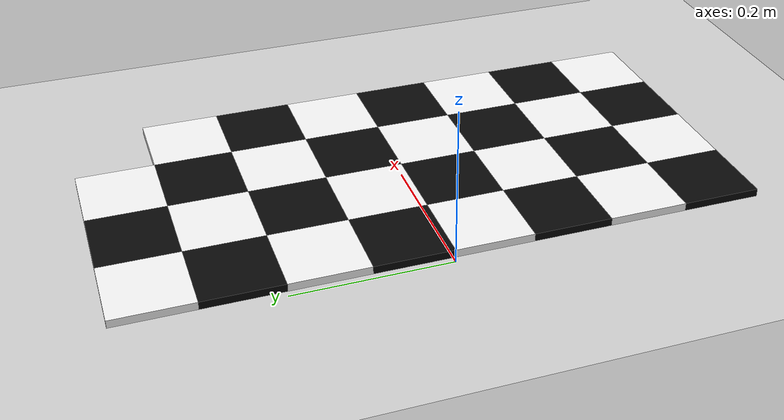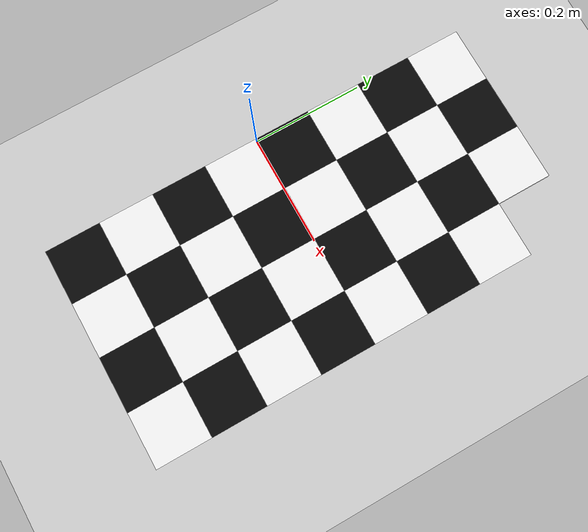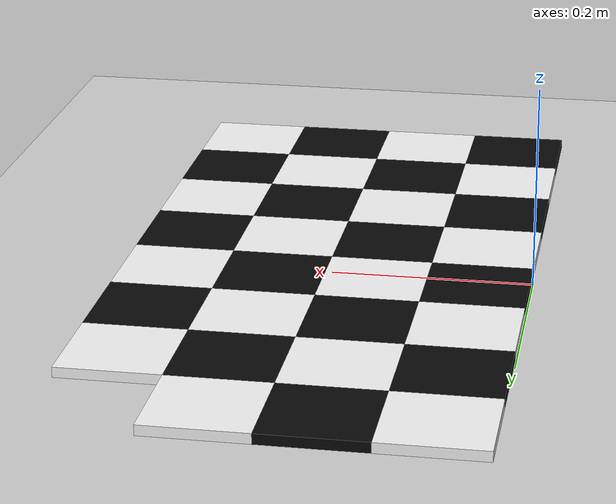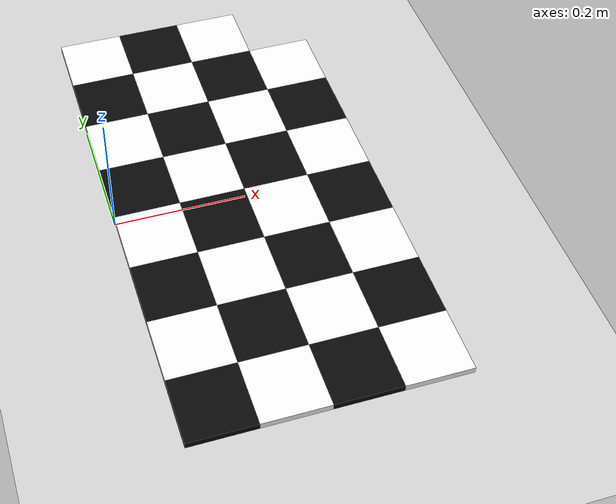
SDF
<sdf version="1.9">
 <world name="v7_railway_tunnel">
  <model name="ground_plane">
   <static>true</static>
   <link name="link">
    <collision name="collision">
     <geometry><plane><normal>0 0 1</normal><size>1 1</size></plane></geometry>
    </collision>
    <visual name="visual">
     <geometry><plane><normal>0 0 1</normal><size>500 500</size></plane></geometry>
     <material>
      <ambient>0.8 0.8 0.8 1</ambient>
      <diffuse>0.8 0.8 0.8 1</diffuse>
      <specular>0.1 0.1 0.1 1</specular>
     </material>
    </visual>
   </link>
  </model>
  <model name="optical_flow_floor">
   <static>true</static>
   <link name="fine_tile_4_0">
    <pose>0.05 -0.35 0.012 0 0 0</pose>
    <visual name="visual">
     <geometry><box><size>0.1 0.1 0.01</size></box></geometry>
     <material>
      <ambient>0.03 0.03 0.03 1</ambient>
      <diffuse>0.03 0.03 0.03 1</diffuse>
      <specular>0.1 0.1 0.1 1</specular>
     </material>
    </visual>
   </link>
   <link name="fine_tile_4_1">
    <pose>0.05 -0.25 0.012 0 0 0</pose>
    <visual name="visual">
     <geometry><box><size>0.1 0.1 0.01</size></box></geometry>
     <material>
      <ambient>0.95 0.95 0.95 1</ambient>
      <diffuse>0.95 0.95 0.95 1</diffuse>
      <specular>0.1 0.1 0.1 1</specular>
     </material>
    </visual>
   </link>
   <link name="fine_tile_4_2">
    <pose>0.05 -0.15 0.012 0 0 0</pose>
    <visual name="visual">
     <geometry><box><size>0.1 0.1 0.01</size></box></geometry>
     <material>
      <ambient>0.03 0.03 0.03 1</ambient>
      <diffuse>0.03 0.03 0.03 1</diffuse>
      <specular>0.1 0.1 0.1 1</specular>
     </material>
    </visual>
   </link>
   <link name="fine_tile_4_3">
    <pose>0.05 -0.05 0.012 0 0 0</pose>
    <visual name="visual">
     <geometry><box><size>0.1 0.1 0.01</size></box></geometry>
     <material>
      <ambient>0.95 0.95 0.95 1</ambient>
      <diffuse>0.95 0.95 0.95 1</diffuse>
      <specular>0.1 0.1 0.1 1</specular>
     </material>
    </visual>
   </link>
   <link name="fine_tile_4_4">
    <pose>0.05 0.05 0.012 0 0 0</pose>
    <visual name="visual">
     <geometry><box><size>0.1 0.1 0.01</size></box></geometry>
     <material>
      <ambient>0.03 0.03 0.03 1</ambient>
      <diffuse>0.03 0.03 0.03 1</diffuse>
      <specular>0.1 0.1 0.1 1</specular>
     </material>
    </visual>
   </link>
   <link name="fine_tile_4_5">
    <pose>0.05 0.15 0.012 0 0 0</pose>
    <visual name="visual">
     <geometry><box><size>0.1 0.1 0.01</size></box></geometry>
     <material>
      <ambient>0.95 0.95 0.95 1</ambient>
      <diffuse>0.95 0.95 0.95 1</diffuse>
      <specular>0.1 0.1 0.1 1</specular>
     </material>
    </visual>
   </link>
   <link name="fine_tile_4_6">
    <pose>0.05 0.25 0.012 0 0 0</pose>
    <visual name="visual">
     <geometry><box><size>0.1 0.1 0.01</size></box></geometry>
     <material>
      <ambient>0.03 0.03 0.03 1</ambient>
      <diffuse>0.03 0.03 0.03 1</diffuse>
      <specular>0.1 0.1 0.1 1</specular>
     </material>
    </visual>
   </link>
   <link name="fine_tile_4_7">
    <pose>0.05 0.35 0.012 0 0 0</pose>
    <visual name="visual">
     <geometry><box><size>0.1 0.1 0.01</size></box></geometry>
     <material>
      <ambient>0.95 0.95 0.95 1</ambient>
      <diffuse>0.95 0.95 0.95 1</diffuse>
      <specular>0.1 0.1 0.1 1</specular>
     </material>
    </visual>
   </link>
   <link name="fine_tile_5_0">
    <pose>0.15 -0.35 0.012 0 0 0</pose>
    <visual name="visual">
     <geometry><box><size>0.1 0.1 0.01</size></box></geometry>
     <material>
      <ambient>0.95 0.95 0.95 1</ambient>
      <diffuse>0.95 0.95 0.95 1</diffuse>
      <specular>0.1 0.1 0.1 1</specular>
     </material>
    </visual>
   </link>
   <link name="fine_tile_5_1">
    <pose>0.15 -0.25 0.012 0 0 0</pose>
    <visual name="visual">
     <geometry><box><size>0.1 0.1 0.01</size></box></geometry>
     <material>
      <ambient>0.03 0.03 0.03 1</ambient>
      <diffuse>0.03 0.03 0.03 1</diffuse>
      <specular>0.1 0.1 0.1 1</specular>
     </material>
    </visual>
   </link>
   <link name="fine_tile_5_2">
    <pose>0.15 -0.15 0.012 0 0 0</pose>
    <visual name="visual">
     <geometry><box><size>0.1 0.1 0.01</size></box></geometry>
     <material>
      <ambient>0.95 0.95 0.95 1</ambient>
      <diffuse>0.95 0.95 0.95 1</diffuse>
      <specular>0.1 0.1 0.1 1</specular>
     </material>
    </visual>
   </link>
   <link name="fine_tile_5_3">
    <pose>0.15 -0.05 0.012 0 0 0</pose>
    <visual name="visual">
     <geometry><box><size>0.1 0.1 0.01</size></box></geometry>
     <material>
      <ambient>0.03 0.03 0.03 1</ambient>
      <diffuse>0.03 0.03 0.03 1</diffuse>
      <specular>0.1 0.1 0.1 1</specular>
     </material>
    </visual>
   </link>
   <link name="fine_tile_5_4">
    <pose>0.15 0.05 0.012 0 0 0</pose>
    <visual name="visual">
     <geometry><box><size>0.1 0.1 0.01</size></box></geometry>
     <material>
      <ambient>0.95 0.95 0.95 1</ambient>
      <diffuse>0.95 0.95 0.95 1</diffuse>
      <specular>0.1 0.1 0.1 1</specular>
     </material>
    </visual>
   </link>
   <link name="fine_tile_5_5">
    <pose>0.15 0.15 0.012 0 0 0</pose>
    <visual name="visual">
     <geometry><box><size>0.1 0.1 0.01</size></box></geometry>
     <material>
      <ambient>0.03 0.03 0.03 1</ambient>
      <diffuse>0.03 0.03 0.03 1</diffuse>
      <specular>0.1 0.1 0.1 1</specular>
     </material>
    </visual>
   </link>
   <link name="fine_tile_5_6">
    <pose>0.15 0.25 0.012 0 0 0</pose>
    <visual name="visual">
     <geometry><box><size>0.1 0.1 0.01</size></box></geometry>
     <material>
      <ambient>0.95 0.95 0.95 1</ambient>
      <diffuse>0.95 0.95 0.95 1</diffuse>
      <specular>0.1 0.1 0.1 1</specular>
     </material>
    </visual>
   </link>
   <link name="fine_tile_5_7">
    <pose>0.15 0.35 0.012 0 0 0</pose>
    <visual name="visual">
     <geometry><box><size>0.1 0.1 0.01</size></box></geometry>
     <material>
      <ambient>0.03 0.03 0.03 1</ambient>
      <diffuse>0.03 0.03 0.03 1</diffuse>
      <specular>0.1 0.1 0.1 1</specular>
     </material>
    </visual>
   </link>
   <link name="fine_tile_6_0">
    <pose>0.25 -0.35 0.012 0 0 0</pose>
    <visual name="visual">
     <geometry><box><size>0.1 0.1 0.01</size></box></geometry>
     <material>
      <ambient>0.03 0.03 0.03 1</ambient>
      <diffuse>0.03 0.03 0.03 1</diffuse>
      <specular>0.1 0.1 0.1 1</specular>
     </material>
    </visual>
   </link>
   <link name="fine_tile_6_1">
    <pose>0.25 -0.25 0.012 0 0 0</pose>
    <visual name="visual">
     <geometry><box><size>0.1 0.1 0.01</size></box></geometry>
     <material>
      <ambient>0.95 0.95 0.95 1</ambient>
      <diffuse>0.95 0.95 0.95 1</diffuse>
      <specular>0.1 0.1 0.1 1</specular>
     </material>
    </visual>
   </link>
   <link name="fine_tile_6_2">
    <pose>0.25 -0.15 0.012 0 0 0</pose>
    <visual name="visual">
     <geometry><box><size>0.1 0.1 0.01</size></box></geometry>
     <material>
      <ambient>0.03 0.03 0.03 1</ambient>
      <diffuse>0.03 0.03 0.03 1</diffuse>
      <specular>0.1 0.1 0.1 1</specular>
     </material>
    </visual>
   </link>
   <link name="fine_tile_6_3">
    <pose>0.25 -0.05 0.012 0 0 0</pose>
    <visual name="visual">
     <geometry><box><size>0.1 0.1 0.01</size></box></geometry>
     <material>
      <ambient>0.95 0.95 0.95 1</ambient>
      <diffuse>0.95 0.95 0.95 1</diffuse>
      <specular>0.1 0.1 0.1 1</specular>
     </material>
    </visual>
   </link>
   <link name="fine_tile_6_4">
    <pose>0.25 0.05 0.012 0 0 0</pose>
    <visual name="visual">
     <geometry><box><size>0.1 0.1 0.01</size></box></geometry>
     <material>
      <ambient>0.03 0.03 0.03 1</ambient>
      <diffuse>0.03 0.03 0.03 1</diffuse>
      <specular>0.1 0.1 0.1 1</specular>
     </material>
    </visual>
   </link>
   <link name="fine_tile_6_5">
    <pose>0.25 0.15 0.012 0 0 0</pose>
    <visual name="visual">
     <geometry><box><size>0.1 0.1 0.01</size></box></geometry>
     <material>
      <ambient>0.95 0.95 0.95 1</ambient>
      <diffuse>0.95 0.95 0.95 1</diffuse>
      <specular>0.1 0.1 0.1 1</specular>
     </material>
    </visual>
   </link>
   <link name="fine_tile_6_6">
    <pose>0.25 0.25 0.012 0 0 0</pose>
    <visual name="visual">
     <geometry><box><size>0.1 0.1 0.01</size></box></geometry>
     <material>
      <ambient>0.03 0.03 0.03 1</ambient>
      <diffuse>0.03 0.03 0.03 1</diffuse>
      <specular>0.1 0.1 0.1 1</specular>
     </material>
    </visual>
   </link>
   <link name="fine_tile_6_7">
    <pose>0.25 0.35 0.012 0 0 0</pose>
    <visual name="visual">
     <geometry><box><size>0.1 0.1 0.01</size></box></geometry>
     <material>
      <ambient>0.95 0.95 0.95 1</ambient>
      <diffuse>0.95 0.95 0.95 1</diffuse>
      <specular>0.1 0.1 0.1 1</specular>
     </material>
    </visual>
   </link>
   <link name="fine_tile_7_0">
    <pose>0.35 -0.35 0.012 0 0 0</pose>
    <visual name="visual">
     <geometry><box><size>0.1 0.1 0.01</size></box></geometry>
     <material>
      <ambient>0.95 0.95 0.95 1</ambient>
      <diffuse>0.95 0.95 0.95 1</diffuse>
      <specular>0.1 0.1 0.1 1</specular>
     </material>
    </visual>
   </link>
   <link name="fine_tile_7_1">
    <pose>0.35 -0.25 0.012 0 0 0</pose>
    <visual name="visual">
     <geometry><box><size>0.1 0.1 0.01</size></box></geometry>
     <material>
      <ambient>0.03 0.03 0.03 1</ambient>
      <diffuse>0.03 0.03 0.03 1</diffuse>
      <specular>0.1 0.1 0.1 1</specular>
     </material>
    </visual>
   </link>
   <link name="fine_tile_7_2">
    <pose>0.35 -0.15 0.012 0 0 0</pose>
    <visual name="visual">
     <geometry><box><size>0.1 0.1 0.01</size></box></geometry>
     <material>
      <ambient>0.95 0.95 0.95 1</ambient>
      <diffuse>0.95 0.95 0.95 1</diffuse>
      <specular>0.1 0.1 0.1 1</specular>
     </material>
    </visual>
   </link>
   <link name="fine_tile_7_3">
    <pose>0.35 -0.05 0.012 0 0 0</pose>
    <visual name="visual">
     <geometry><box><size>0.1 0.1 0.01</size></box></geometry>
     <material>
      <ambient>0.03 0.03 0.03 1</ambient>
      <diffuse>0.03 0.03 0.03 1</diffuse>
      <specular>0.1 0.1 0.1 1</specular>
     </material>
    </visual>
   </link>
   <link name="fine_tile_7_4">
    <pose>0.35 0.05 0.012 0 0 0</pose>
    <visual name="visual">
     <geometry><box><size>0.1 0.1 0.01</size></box></geometry>
     <material>
      <ambient>0.95 0.95 0.95 1</ambient>
      <diffuse>0.95 0.95 0.95 1</diffuse>
      <specular>0.1 0.1 0.1 1</specular>
     </material>
    </visual>
   </link>
   <link name="fine_tile_7_5">
    <pose>0.35 0.15 0.012 0 0 0</pose>
    <visual name="visual">
     <geometry><box><size>0.1 0.1 0.01</size></box></geometry>
     <material>
      <ambient>0.03 0.03 0.03 1</ambient>
      <diffuse>0.03 0.03 0.03 1</diffuse>
      <specular>0.1 0.1 0.1 1</specular>
     </material>
    </visual>
   </link>
   <link name="fine_tile_7_6">
    <pose>0.35 0.25 0.012 0 0 0</pose>
    <visual name="visual">
     <geometry><box><size>0.1 0.1 0.01</size></box></geometry>
     <material>
      <ambient>0.95 0.95 0.95 1</ambient>
      <diffuse>0.95 0.95 0.95 1</diffuse>
      <specular>0.1 0.1 0.1 1</specular>
     </material>
    </visual>
   </link>
  </model>
 </world>
</sdf>
